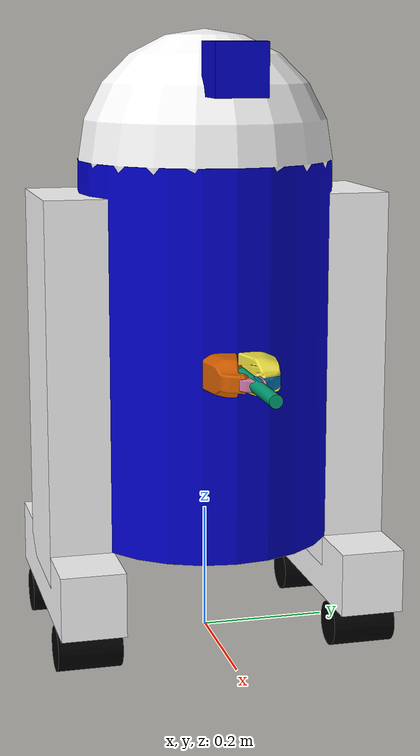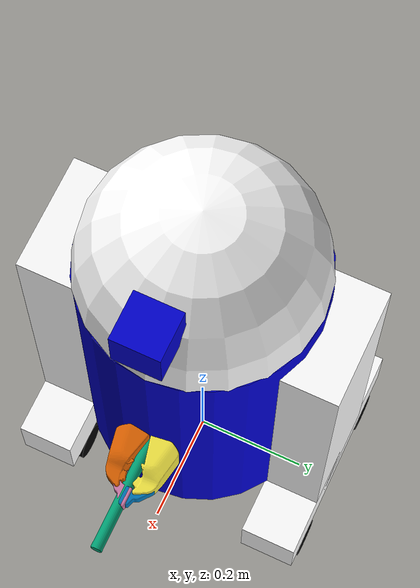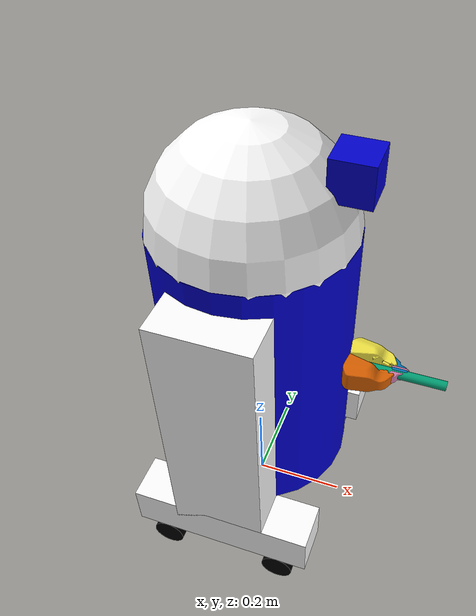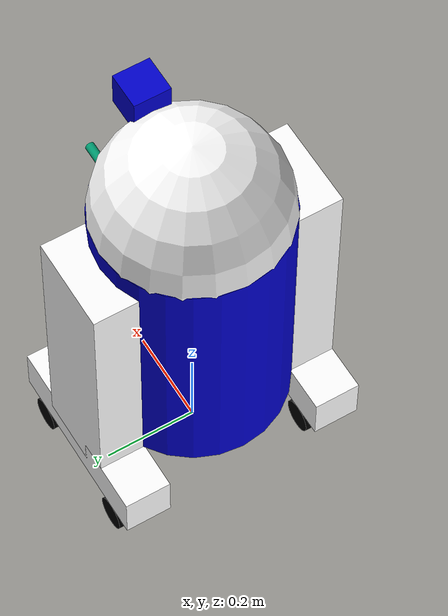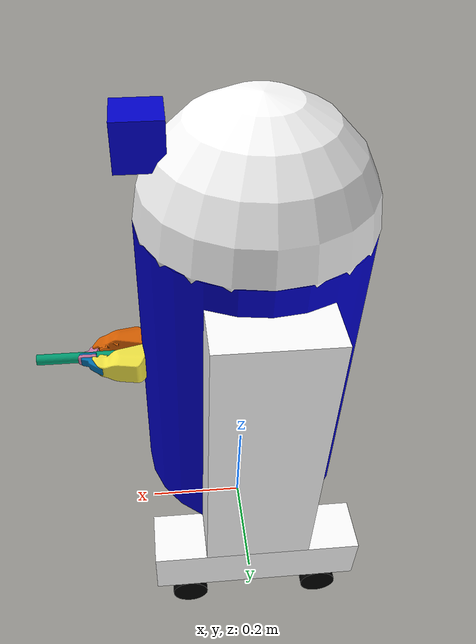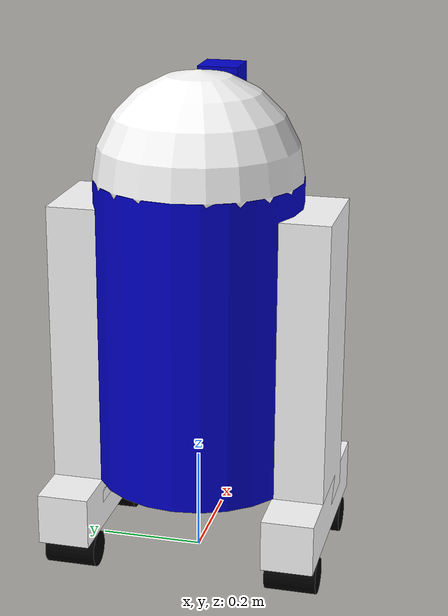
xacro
<?xml version="1.0"?>
<robot xmlns:xacro="http://www.ros.org/wiki/xacro" name="r2d2">

  <material name="blue">
    <color rgba="0 0 .8 1"/>
  </material>
  <material name="black">
    <color rgba="0 0 0 1"/>
  </material>
  <material name="white">
    <color rgba="1 1 1 1"/>
  </material>

  <xacro:property name="width" value=".2" />
  <xacro:property name="bodylen" value=".6" />
  <xacro:property name="wheelRadius" value="0.035" />
  <xacro:property name="footBaseThickness" value="0.1" />

  <xacro:macro name="default_inertial" params="mass">
      <inertial>
        <mass value="${mass}" />
        <inertia ixx="1.0" ixy="0.0" ixz="0.0"
             iyy="1.0" iyz="0.0"
             izz="1.0" />
      </inertial>
  </xacro:macro>

  <link name="base_link">
    <visual>
      <geometry>
        <cylinder length="${bodylen}" radius="${width}"/>
      </geometry>
      <material name="blue"/>
    </visual>
    <collision>
      <geometry>
        <cylinder length="${bodylen}" radius="${width}"/>
      </geometry>
    </collision>
    <xacro:default_inertial mass="10"/>
  </link>

  <link name="base_footprint">

  </link>

  <joint name="base_to_base_footprint" type="fixed">
    <parent link="base_footprint"/>
    <child link="base_link"/>
    <origin xyz="0 0 ${+(bodylen/2)+(wheelRadius*2)+footBaseThickness}"/>
  </joint>

  <link name="right_leg">
    <visual>
      <geometry>
        <box size="0.6 .1 .2"/>
      </geometry>
      <origin rpy="0 1.57075 0" xyz="0 0 -0.3"/>
      <material name="white"/>
    </visual>
  </link>

  <joint name="base_to_right_leg" type="fixed">
    <parent link="base_link"/>
    <child link="right_leg"/>
    <origin xyz="0 -0.22 .25"/>
  </joint>

  <link name="right_base">
    <visual>
      <geometry>
        <box size="0.4 ${footBaseThickness} ${footBaseThickness}"/>
      </geometry>
      <material name="white"/>
    </visual>
  </link>

  <joint name="right_base_joint" type="fixed">
    <parent link="right_leg"/>
    <child link="right_base"/>
    <origin xyz="0 0 -0.6"/>
  </joint>

  <link name="right_front_wheel">
    <visual>
      <origin rpy="1.57075 0 0" xyz="0 0 0"/>
      <geometry>
        <cylinder length="0.1" radius="${wheelRadius}"/>
      </geometry>
      <material name="black"/>
      <origin rpy="0 0 0" xyz="0 0 0"/>
    </visual>
  </link>
  <joint name="right_front_wheel_joint" type="fixed">
    <axis rpy="0 0 0" xyz="0 1 0"/>
    <parent link="right_base"/>
    <child link="right_front_wheel"/>
    <origin rpy="0 0 0" xyz="0.133333333333 0 -0.085"/>
  </joint>

  <link name="right_back_wheel">
    <visual>
      <origin rpy="1.57075 0 0" xyz="0 0 0"/>
      <geometry>
        <cylinder length="0.1" radius="${wheelRadius}"/>
      </geometry>
      <material name="black"/>
    </visual>
  </link>
  <joint name="right_back_wheel_joint" type="fixed">
    <axis rpy="0 0 0" xyz="0 1 0"/>
    <parent link="right_base"/>
    <child link="right_back_wheel"/>
    <origin rpy="0 0 0" xyz="-0.133333333333 0 -0.085"/>
  </joint>

  <link name="left_leg">
    <visual>
      <geometry>
        <box size="0.6 .1 .2"/>
      </geometry>
      <origin rpy="0 1.57075 0" xyz="0 0 -0.3"/>
      <material name="white"/>
    </visual>
  </link>

  <joint name="base_to_left_leg" type="fixed">
    <parent link="base_link"/>
    <child link="left_leg"/>
    <origin xyz="0 0.22 .25"/>
  </joint>

  <link name="left_base">
    <visual>
      <geometry>
        <box size="0.4 ${footBaseThickness} ${footBaseThickness}"/>
      </geometry>
      <material name="white"/>
    </visual>
  </link>

  <joint name="left_base_joint" type="fixed">
    <parent link="left_leg"/>
    <child link="left_base"/>
    <origin xyz="0 0 -0.6"/>
  </joint>

  <link name="left_front_wheel">
    <visual>
      <origin rpy="1.57075 0 0" xyz="0 0 0"/>
      <geometry>
        <cylinder length="0.1" radius="0.035"/>
      </geometry>
      <material name="black"/>
    </visual>
  </link>
  <joint name="left_front_wheel_joint" type="fixed">
    <parent link="left_base"/>
    <child link="left_front_wheel"/>
    <origin rpy="0 0 0" xyz="0.133333333333 0 -0.085"/>
  </joint>

  <link name="left_back_wheel">
    <visual>
      <origin rpy="1.57075 0 0" xyz="0 0 0"/>
      <geometry>
        <cylinder length="0.1" radius="0.035"/>
      </geometry>
      <material name="black"/>
    </visual>
  </link>
  <joint name="left_back_wheel_joint" type="fixed">
    <axis rpy="0 0 0" xyz="0 1 0"/>
    <parent link="left_base"/>
    <child link="left_back_wheel"/>
    <origin rpy="0 0 0" xyz="-0.133333333333 0 -0.085"/>
  </joint>

  <link name="gripper_pole">
    <visual>
      <geometry>
        <cylinder length="0.2" radius=".01"/>
      </geometry>
      <origin rpy="0 1.57075 0" xyz="0.3 0 0"/>
    </visual>
  </link>
  <joint name="gripper_extension" type="prismatic">
    <parent link="base_link"/>
    <child link="gripper_pole"/>
    <limit effort="1000.0" lower="-0.38" upper="0" velocity="0.5"/>
    <origin rpy="0 0 0" xyz="0 0 0"/>
  </joint>

   <joint name="left_gripper_joint" type="revolute">
    <origin rpy="0 0 0" xyz="0.2 0.01 0"/>
    <parent link="gripper_pole"/>
    <child link="left_gripper"/>
    <axis xyz="0 0 1"/>
    <limit effort="1000.0" lower="0.0" upper="0.548" velocity="0.5"/>
  </joint>

  <link name="left_gripper">
    <visual>
      <origin rpy="0.0 0 0" xyz="0 0 0"/>
      <geometry>
        <mesh filename="package://pr2_description/meshes/gripper_v0/l_finger.dae"/>
      </geometry>
    </visual>
  </link>

  <joint name="left_tip_joint" type="fixed">
    <parent link="left_gripper"/>
    <child link="left_tip"/>
  </joint>

  <link name="left_tip">
    <visual>
      <origin rpy="0.0 0 0" xyz="0.09137 0.00495 0"/>
      <geometry>
        <mesh filename="package://pr2_description/meshes/gripper_v0/l_finger_tip.dae"/>
      </geometry>
    </visual>
  </link>
  <joint name="right_gripper_joint" type="revolute">
    <origin rpy="0 0 0" xyz="0.2 -0.01 0"/>
    <parent link="gripper_pole"/>
    <child link="right_gripper"/>
    <axis xyz="0 0 1"/>
    <limit effort="1000.0" lower="0.548" upper="0.0" velocity="0.5"/>
  </joint>

  <link name="right_gripper">
    <visual>
      <origin rpy="-3.1415 0 0" xyz="0 0 0"/>
      <geometry>
        <mesh filename="package://pr2_description/meshes/gripper_v0/l_finger.dae"/>
      </geometry>
    </visual>
  </link>

  <joint name="right_tip_joint" type="fixed">
    <parent link="right_gripper"/>
    <child link="right_tip"/>
  </joint>

  <link name="right_tip">
    <visual>
      <origin rpy="-3.1415 0 0" xyz="0.09137 0.00495 0"/>
      <geometry>
        <mesh filename="package://pr2_description/meshes/gripper_v0/l_finger_tip.dae"/>
      </geometry>
    </visual>
  </link>

  <link name="head">
    <visual>
      <geometry>
        <sphere radius="0.2"/>
      </geometry>
      <material name="white"/>
    </visual>
  </link>

  <joint name="head_swivel" type="continuous">
    <parent link="base_link"/>
    <child link="head"/>
    <axis xyz="0 0 1"/>
    <origin xyz="0 0 0.3"/>
  </joint>

  <link name="box">
    <visual>
      <geometry>
        <box size=".08 .08 .08"/>
      </geometry>
      <material name="blue"/>
    </visual>
  </link>

  <link name="eye">

  </link>

  <joint name="eye_to_box" type="fixed">
    <parent link="box"/>
    <child link="eye"/>
    <origin rpy="1.57 3.14 1.57" xyz="0 0 0"/>
  </joint>

  <joint name="tobox" type="fixed">
    <parent link="head"/>
    <child link="box"/>
    <origin xyz="0.1814 0 0.1414"/>
  </joint>
</robot>
